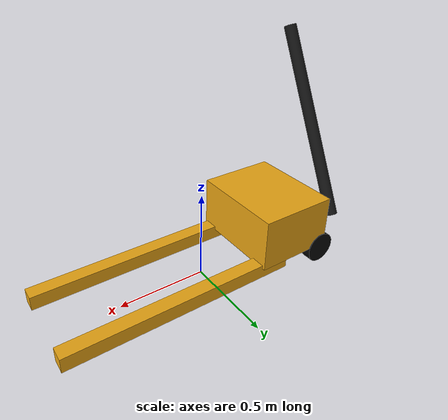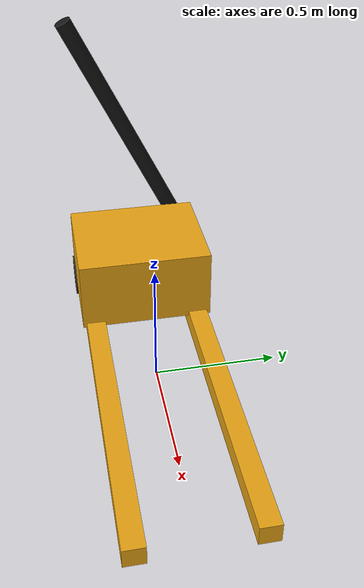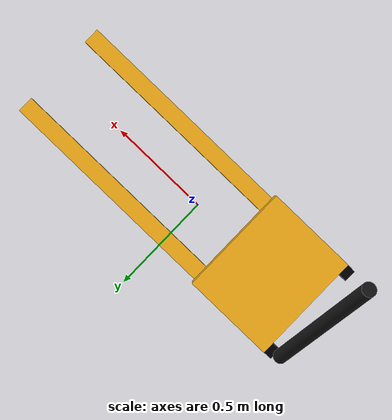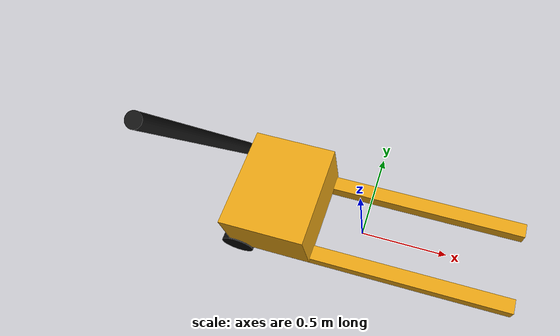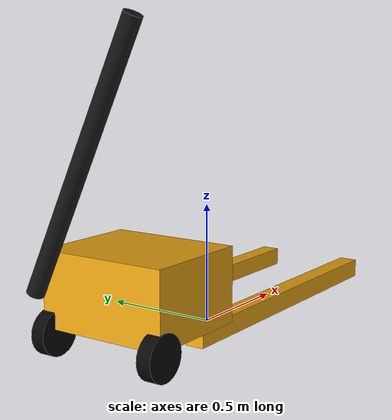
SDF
<?xml version="1.0"?>
<sdf version="1.11">
  <model name="warehouse_pallet_jack">
    <static>true</static>
    <link name="link">
      <collision name="collision"><pose>0 0 0.25 0 0 0</pose><geometry><box><size>1.6 0.7 0.5</size></box></geometry></collision>
      <visual name="fork_left"><pose>0.25 -0.22 0.08 0 0 0</pose><geometry><box><size>1.3 0.08 0.08</size></box></geometry><material><ambient>0.92 0.65 0.08 1</ambient><diffuse>0.92 0.65 0.08 1</diffuse></material></visual>
      <visual name="fork_right"><pose>0.25 0.22 0.08 0 0 0</pose><geometry><box><size>1.3 0.08 0.08</size></box></geometry><material><ambient>0.92 0.65 0.08 1</ambient><diffuse>0.92 0.65 0.08 1</diffuse></material></visual>
      <visual name="body"><pose>-0.45 0 0.25 0 0 0</pose><geometry><box><size>0.45 0.55 0.30</size></box></geometry><material><ambient>0.92 0.65 0.08 1</ambient><diffuse>0.92 0.65 0.08 1</diffuse></material></visual>
      <visual name="handle"><pose>-0.75 0 0.75 0.45 0 0</pose><geometry><cylinder><radius>0.035</radius><length>1.1</length></cylinder></geometry><material><ambient>0.08 0.08 0.08 1</ambient><diffuse>0.08 0.08 0.08 1</diffuse></material></visual>
      <visual name="wheel_left"><pose>-0.65 -0.25 0.08 1.5708 0 0</pose><geometry><cylinder><radius>0.09</radius><length>0.06</length></cylinder></geometry><material><ambient>0.03 0.03 0.03 1</ambient><diffuse>0.03 0.03 0.03 1</diffuse></material></visual>
      <visual name="wheel_right"><pose>-0.65 0.25 0.08 1.5708 0 0</pose><geometry><cylinder><radius>0.09</radius><length>0.06</length></cylinder></geometry><material><ambient>0.03 0.03 0.03 1</ambient><diffuse>0.03 0.03 0.03 1</diffuse></material></visual>
    </link>
  </model>
</sdf>
